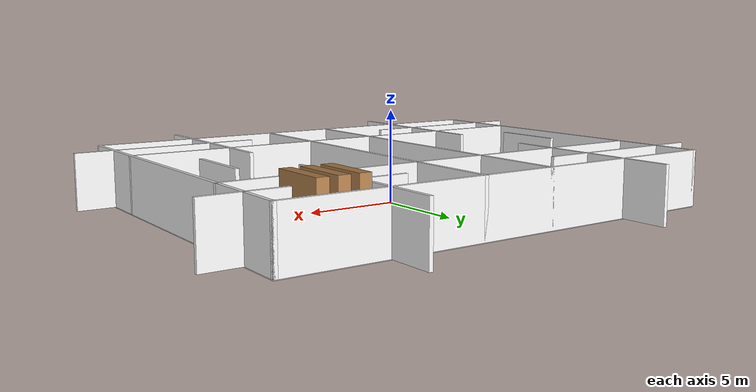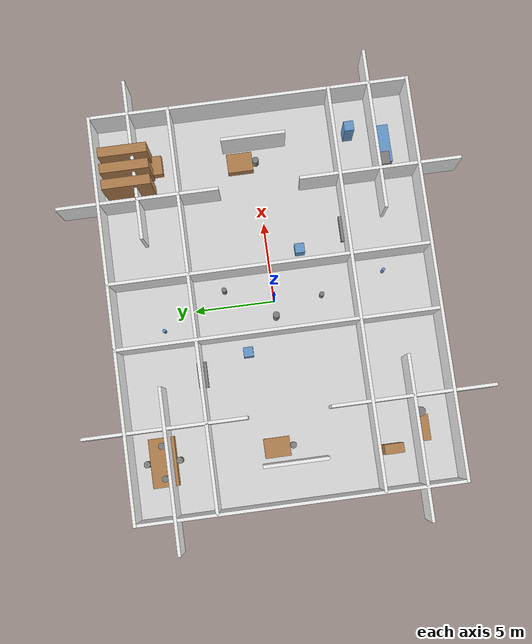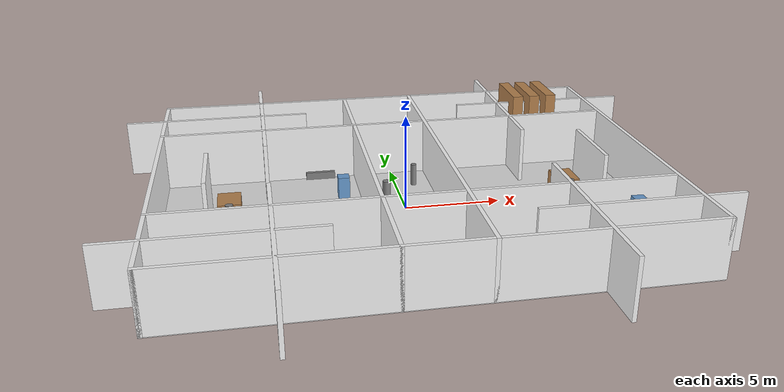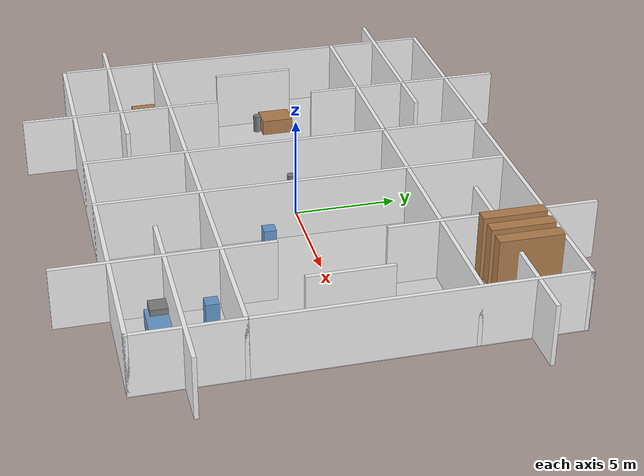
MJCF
<?xml version="1.0"?>
<mujoco model="complex_office">
  <compiler angle="degree" coordinate="local" inertiafromgeom="true"/>
  <option timestep="0.002" gravity="0 0 -9.81" iterations="50" solver="PGS"/>

  <default>
    <joint armature="0.01" damping="0.1"/>
    <geom friction="0.9 0.1 0.1" density="1000" margin="0.001"/>
  </default>

  <asset>
    <texture name="floor_tex" type="2d" builtin="checker" rgb1="0.9 0.9 0.9" rgb2="0.8 0.8 0.8" width="512" height="512"/>
    <texture name="wall_tex" type="2d" builtin="flat" rgb1="0.95 0.95 0.95" width="512" height="512"/>
    <texture name="office_tex" type="2d" builtin="flat" rgb1="0.7 0.5 0.3" width="512" height="512"/>
    <texture name="lab_tex" type="2d" builtin="flat" rgb1="0.4 0.6 0.8" width="512" height="512"/>
    <texture name="furniture_tex" type="2d" builtin="flat" rgb1="0.5 0.5 0.5" width="512" height="512"/>

    <material name="floor_mat" texture="floor_tex" reflectance="0.2"/>
    <material name="wall_mat" texture="wall_tex" reflectance="0.1"/>
    <material name="office_mat" texture="office_tex" reflectance="0.1"/>
    <material name="lab_mat" texture="lab_tex" reflectance="0.1"/>
    <material name="furniture_mat" texture="furniture_tex" reflectance="0.1"/>
  </asset>

  <worldbody>
    <!-- Lighting -->
    <light name="main_light" pos="0 0 4" dir="0 0 -1" diffuse="1 1 1"/>
    <light name="ambient" pos="0 0 0" dir="0 0 -1" diffuse="0.4 0.4 0.4"/>

    <!-- Floor -->
    <geom name="floor" type="plane" size="12.5 10 0.1" material="floor_mat" pos="0 0 0"/>

    <!-- Robot will be added automatically by StretchMujocoSimulator when scene_path is used -->

    <!-- External Walls -->
    <geom name="wall_north" type="box" size="12.5 0.1 1.5" pos="0 9.9 1.5" material="wall_mat"/>
    <geom name="wall_south" type="box" size="12.5 0.1 1.5" pos="0 -9.9 1.5" material="wall_mat"/>
    <geom name="wall_east" type="box" size="0.1 10 1.5" pos="12.4 0 1.5" material="wall_mat"/>
    <geom name="wall_west" type="box" size="0.1 10 1.5" pos="-12.4 0 1.5" material="wall_mat"/>

    <!-- Central Corridor Walls -->
    <geom name="corridor_west" type="box" size="0.1 10 1.5" pos="-2 0 1.5" material="wall_mat"/>
    <geom name="corridor_east" type="box" size="0.1 10 1.5" pos="2 0 1.5" material="wall_mat"/>

    <!-- Cross Corridors -->
    <geom name="cross_north" type="box" size="12.5 0.1 1.5" pos="0 5 1.5" material="wall_mat"/>
    <geom name="cross_south" type="box" size="12.5 0.1 1.5" pos="0 -5 1.5" material="wall_mat"/>

    <!-- Room Division Walls -->
    <!-- Southwest Office -->
    <geom name="sw_wall" type="box" size="0.1 5 1.5" pos="-7 -7.5 1.5" material="wall_mat"/>
    <geom name="sw_wall_h" type="box" size="5 0.1 1.5" pos="-9.5 -7.5 1.5" material="wall_mat"/>

    <!-- Southeast Lab -->
    <geom name="se_wall" type="box" size="0.1 5 1.5" pos="7 -7.5 1.5" material="wall_mat"/>
    <geom name="se_wall_h" type="box" size="5 0.1 1.5" pos="9.5 -7.5 1.5" material="wall_mat"/>

    <!-- Northwest Meeting -->
    <geom name="nw_wall" type="box" size="0.1 5 1.5" pos="-7 7.5 1.5" material="wall_mat"/>
    <geom name="nw_wall_h" type="box" size="5 0.1 1.5" pos="-9.5 7.5 1.5" material="wall_mat"/>

    <!-- Northeast Library -->
    <geom name="ne_wall" type="box" size="0.1 5 1.5" pos="7 7.5 1.5" material="wall_mat"/>
    <geom name="ne_wall_h" type="box" size="5 0.1 1.5" pos="9.5 7.5 1.5" material="wall_mat"/>

    <!-- Central Room Walls -->
    <geom name="central_west" type="box" size="0.1 2 1.5" pos="-10 0 1.5" material="wall_mat"/>
    <geom name="central_east" type="box" size="0.1 2 1.5" pos="10 0 1.5" material="wall_mat"/>

    <!-- Office Furniture (Southwest) -->
    <geom name="office_desk1" type="box" size="0.8 0.4 0.4" pos="-9 -8 0.4" material="office_mat"/>
    <geom name="office_chair1" type="cylinder" size="0.3 0.45" pos="-8 -8 0.45" material="furniture_mat"/>
    <geom name="office_cabinet1" type="box" size="0.3 0.6 0.8" pos="-10 -6 0.8" material="office_mat"/>

    <!-- Lab Equipment (Southeast) -->
    <geom name="lab_bench1" type="box" size="1.2 0.6 0.45" pos="9 -8 0.45" material="lab_mat"/>
    <geom name="lab_equipment1" type="box" size="0.4 0.4 0.6" pos="8 -8 0.6" material="furniture_mat"/>
    <geom name="lab_storage1" type="box" size="0.3 0.3 1.2" pos="10 -6 1.2" material="lab_mat"/>

    <!-- Meeting Room Furniture (Northwest) -->
    <geom name="meeting_table" type="box" size="1.5 0.8 0.4" pos="-9 8 0.4" material="office_mat"/>
    <geom name="meeting_chair1" type="cylinder" size="0.2 0.45" pos="-8 8 0.45" material="furniture_mat"/>
    <geom name="meeting_chair2" type="cylinder" size="0.2 0.45" pos="-10 8 0.45" material="furniture_mat"/>
    <geom name="meeting_chair3" type="cylinder" size="0.2 0.45" pos="-9 7 0.45" material="furniture_mat"/>
    <geom name="meeting_chair4" type="cylinder" size="0.2 0.45" pos="-9 9 0.45" material="furniture_mat"/>

    <!-- Library Furniture (Northeast) -->
    <geom name="bookshelf1" type="box" size="0.3 1.5 1.8" pos="9 8 1.8" material="office_mat"/>
    <geom name="bookshelf2" type="box" size="0.3 1.5 1.8" pos="8 8 1.8" material="office_mat"/>
    <geom name="bookshelf3" type="box" size="0.3 1.5 1.8" pos="10 8 1.8" material="office_mat"/>
    <geom name="reading_table" type="box" size="0.6 0.6 0.4" pos="9.5 6.5 0.4" material="office_mat"/>

    <!-- Central Room Furniture -->
    <geom name="central_desk_w" type="box" size="0.6 0.8 0.4" pos="-9 1 0.4" material="office_mat"/>
    <geom name="central_desk_e" type="box" size="0.6 0.8 0.4" pos="9 1 0.4" material="office_mat"/>
    <geom name="central_chair_w" type="cylinder" size="0.2 0.45" pos="-9 0 0.45" material="furniture_mat"/>
    <geom name="central_chair_e" type="cylinder" size="0.2 0.45" pos="9 0 0.45" material="furniture_mat"/>

    <!-- Corridor Furniture -->
    <geom name="corridor_info" type="cylinder" size="0.2 0.8" pos="-1 0 0.8" material="furniture_mat"/>
    <geom name="corridor_trash1" type="cylinder" size="0.15 0.6" pos="1 3 0.6" material="furniture_mat"/>
    <geom name="corridor_fountain" type="cylinder" size="0.15 0.4" pos="0 -3 0.4" material="furniture_mat"/>

    <!-- Corridor Benches -->
    <geom name="bench_north" type="box" size="0.8 0.3 0.2" pos="-4 5 0.2" material="furniture_mat"/>
    <geom name="bench_south" type="box" size="0.8 0.3 0.2" pos="4 -5 0.2" material="furniture_mat"/>

    <!-- Plants -->
    <geom name="plant1" type="cylinder" size="0.1 0.5" pos="-1 7 0.5" material="lab_mat"/>
    <geom name="plant2" type="cylinder" size="0.1 0.5" pos="1 -7 0.5" material="lab_mat"/>

    <!-- Narrow Passage Obstacles -->
    <geom name="narrow_obs1" type="cylinder" size="0.1 0.4" pos="-0.5 5 0.4" material="furniture_mat"/>
    <geom name="narrow_obs2" type="cylinder" size="0.1 0.4" pos="0.5 -5 0.4" material="furniture_mat"/>

    <!-- Movable Equipment -->
    <geom name="movable1" type="box" size="0.3 0.3 0.6" pos="-3 2 0.6" material="lab_mat"/>
    <geom name="movable2" type="box" size="0.3 0.3 0.6" pos="3 -2 0.6" material="lab_mat"/>

  </worldbody>
</mujoco>
